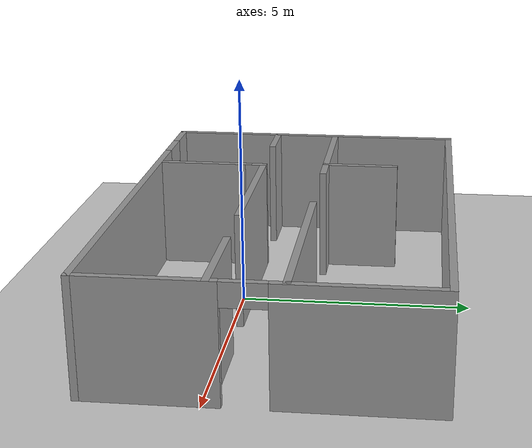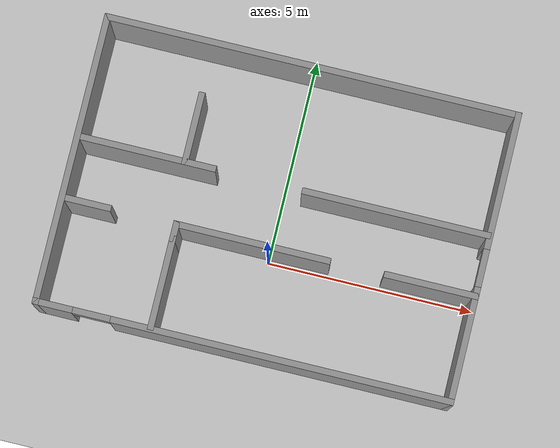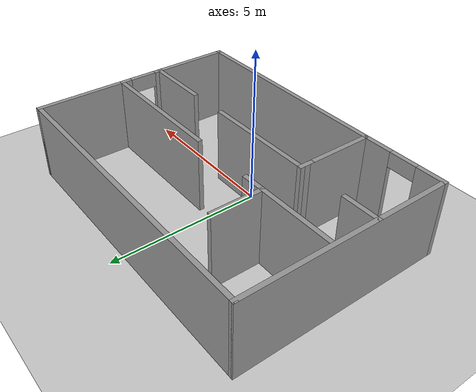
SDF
<?xml version="1.0" ?>
<sdf version='1.5'>

  <world name="default">
    <include>
      <uri>model://sun</uri>
    </include>

    <include>
      <uri>model://ground_plane</uri>
    </include>

    <physics type='ode'>
      <max_step_size>0.01</max_step_size>
      <real_time_factor>1</real_time_factor>
      <real_time_update_rate>100</real_time_update_rate>
      <gravity>0 0 -9.8</gravity>
    </physics>

  <model name='house'>

    <pose frame=''>-0.028762 1.07794 0 0 -0 0</pose>

    <link name='Wall_109'>
      <pose frame=''>0 -3.425 0 0 -0 0</pose>
      <visual name='Wall_109_Visual_0'>
        <pose frame=''>-4.52236 0 1.25 0 -0 0</pose>
        <geometry>
          <box>
            <size>0.955286 0.15 2.5</size>
          </box>
        </geometry>
        <material>
          <script>
            <uri>file://media/materials/scripts/gazebo.material</uri>
            <name>Gazebo/Grey</name>
          </script>
          <ambient>1 1 1 1</ambient>
        </material>
        <meta>
          <layer>0</layer>
        </meta>
      </visual>
      <collision name='Wall_109_Collision_0'>
        <geometry>
          <box>
            <size>0.955286 0.15 2.5</size>
          </box>
        </geometry>
        <pose frame=''>-4.52236 0 1.25 0 -0 0</pose>
      </collision>
      <visual name='Wall_109_Visual_1'>
        <pose frame=''>0.927643 0 1.25 0 -0 0</pose>
        <geometry>
          <box>
            <size>8.14471 0.15 2.5</size>
          </box>
        </geometry>
        <material>
          <script>
            <uri>file://media/materials/scripts/gazebo.material</uri>
            <name>Gazebo/Grey</name>
          </script>
          <ambient>1 1 1 1</ambient>
        </material>
        <meta>
          <layer>0</layer>
        </meta>
      </visual>
      <collision name='Wall_109_Collision_1'>
        <geometry>
          <box>
            <size>8.14471 0.15 2.5</size>
          </box>
        </geometry>
        <pose frame=''>0.927643 0 1.25 0 -0 0</pose>
      </collision>
      <visual name='Wall_109_Visual_2'>
        <pose frame=''>-3.59471 0 2.25 0 -0 0</pose>
        <geometry>
          <box>
            <size>0.9 0.15 0.5</size>
          </box>
        </geometry>
        <material>
          <script>
            <uri>file://media/materials/scripts/gazebo.material</uri>
            <name>Gazebo/Grey</name>
          </script>
          <ambient>1 1 1 1</ambient>
        </material>
        <meta>
          <layer>0</layer>
        </meta>
      </visual>
      <collision name='Wall_109_Collision_2'>
        <geometry>
          <box>
            <size>0.9 0.15 0.5</size>
          </box>
        </geometry>
        <pose frame=''>-3.59471 0 2.25 0 -0 0</pose>
      </collision>
    </link>

    <link name='Wall_111'>
      <collision name='Wall_111_Collision'>
        <geometry>
          <box>
            <size>7 0.15 2.5</size>
          </box>
        </geometry>
        <pose frame=''>0 0 1.25 0 -0 0</pose>
      </collision>
      <visual name='Wall_111_Visual'>
        <pose frame=''>0 0 1.25 0 -0 0</pose>
        <geometry>
          <box>
            <size>7 0.15 2.5</size>
          </box>
        </geometry>
        <material>
          <script>
            <uri>file://media/materials/scripts/gazebo.material</uri>
            <name>Gazebo/Grey</name>
          </script>
          <ambient>1 1 1 1</ambient>
        </material>
        <meta>
          <layer>0</layer>
        </meta>
      </visual>
      <pose frame=''>-4.925 -0 0 0 -0 1.5708</pose>
    </link>

    <link name='Wall_113'>
      <collision name='Wall_113_Collision'>
        <geometry>
          <box>
            <size>10 0.15 2.5</size>
          </box>
        </geometry>
        <pose frame=''>0 0 1.25 0 -0 0</pose>
      </collision>
      <visual name='Wall_113_Visual'>
        <pose frame=''>0 0 1.25 0 -0 0</pose>
        <geometry>
          <box>
            <size>10 0.15 2.5</size>
          </box>
        </geometry>
        <material>
          <script>
            <uri>file://media/materials/scripts/gazebo.material</uri>
            <name>Gazebo/Grey</name>
          </script>
          <ambient>1 1 1 1</ambient>
        </material>
        <meta>
          <layer>0</layer>
        </meta>
      </visual>
      <pose frame=''>0 3.425 0 0 -0 0</pose>
    </link>

    <link name='Wall_115'>
      <pose frame=''>4.925 -0 0 0 -0 -1.5708</pose>
      <visual name='Wall_115_Visual_0'>
        <pose frame=''>-1.85239 0 1.25 0 -0 0</pose>
        <geometry>
          <box>
            <size>3.29522 0.15 2.5</size>
          </box>
        </geometry>
        <material>
          <script>
            <uri>file://media/materials/scripts/gazebo.material</uri>
            <name>Gazebo/Grey</name>
          </script>
          <ambient>1 1 1 1</ambient>
        </material>
        <meta>
          <layer>0</layer>
        </meta>
      </visual>
      <collision name='Wall_115_Collision_0'>
        <geometry>
          <box>
            <size>3.29522 0.15 2.5</size>
          </box>
        </geometry>
        <pose frame=''>-1.85239 0 1.25 0 -0 0</pose>
      </collision>
      <visual name='Wall_115_Visual_1'>
        <pose frame=''>2.09761 0 1.25 0 -0 0</pose>
        <geometry>
          <box>
            <size>2.80478 0.15 2.5</size>
          </box>
        </geometry>
        <material>
          <script>
            <uri>file://media/materials/scripts/gazebo.material</uri>
            <name>Gazebo/Grey</name>
          </script>
          <ambient>1 1 1 1</ambient>
        </material>
        <meta>
          <layer>0</layer>
        </meta>
      </visual>
      <collision name='Wall_115_Collision_1'>
        <geometry>
          <box>
            <size>2.80478 0.15 2.5</size>
          </box>
        </geometry>
        <pose frame=''>2.09761 0 1.25 0 -0 0</pose>
      </collision>
      <visual name='Wall_115_Visual_2'>
        <pose frame=''>0.245219 0 2.25 0 -0 0</pose>
        <geometry>
          <box>
            <size>0.9 0.15 0.5</size>
          </box>
        </geometry>
        <material>
          <script>
            <uri>file://media/materials/scripts/gazebo.material</uri>
            <name>Gazebo/Grey</name>
          </script>
          <ambient>1 1 1 1</ambient>
        </material>
        <meta>
          <layer>0</layer>
        </meta>
      </visual>
      <collision name='Wall_115_Collision_2'>
        <geometry>
          <box>
            <size>0.9 0.15 0.5</size>
          </box>
        </geometry>
        <pose frame=''>0.245219 0 2.25 0 -0 0</pose>
      </collision>
    </link>

    <link name='Wall_17'>
      <collision name='Wall_17_Collision'>
        <geometry>
          <box>
            <size>1.25 0.15 2.5</size>
          </box>
        </geometry>
        <pose frame=''>0 0 1.25 0 -0 0</pose>
      </collision>
      <visual name='Wall_17_Visual'>
        <pose frame=''>0 0 1.25 0 -0 0</pose>
        <geometry>
          <box>
            <size>1.25 0.15 2.5</size>
          </box>
        </geometry>
        <material>
          <script>
            <uri>file://media/materials/scripts/gazebo.material</uri>
            <name>Gazebo/Grey</name>
          </script>
          <ambient>1 1 1 1</ambient>
        </material>
        <meta>
          <layer>0</layer>
        </meta>
      </visual>
      <pose frame=''>-4.37258 -0.929679 0 0 -0 3.14159</pose>
    </link>

    <link name='Wall_21'>
      <collision name='Wall_21_Collision'>
        <geometry>
          <box>
            <size>3.75 0.15 2.5</size>
          </box>
        </geometry>
        <pose frame=''>0 0 1.25 0 -0 0</pose>
      </collision>
      <visual name='Wall_21_Visual'>
        <pose frame=''>0 0 1.25 0 -0 0</pose>
        <geometry>
          <box>
            <size>3.75 0.15 2.5</size>
          </box>
        </geometry>
        <material>
          <script>
            <uri>file://media/materials/scripts/gazebo.material</uri>
            <name>Gazebo/Grey</name>
          </script>
          <ambient>1 1 1 1</ambient>
        </material>
        <meta>
          <layer>0</layer>
        </meta>
      </visual>
      <pose frame=''>-0.393633 -0.923824 0 0 -0 0</pose>
    </link>

    <link name='Wall_23'>
      <collision name='Wall_23_Collision'>
        <geometry>
          <box>
            <size>2.25 0.15 2.5</size>
          </box>
        </geometry>
        <pose frame=''>0 0 1.25 0 -0 0</pose>
      </collision>
      <visual name='Wall_23_Visual'>
        <pose frame=''>0 0 1.25 0 -0 0</pose>
        <geometry>
          <box>
            <size>2.25 0.15 2.5</size>
          </box>
        </geometry>
        <material>
          <script>
            <uri>file://media/materials/scripts/gazebo.material</uri>
            <name>Gazebo/Grey</name>
          </script>
          <ambient>1 1 1 1</ambient>
        </material>
        <meta>
          <layer>0</layer>
        </meta>
      </visual>
      <pose frame=''>3.87339 -0.917109 0 0 -0 0</pose>
    </link>

    <link name='Wall_25'>
      <collision name='Wall_25_Collision'>
        <geometry>
          <box>
            <size>4.5 0.15 2.5</size>
          </box>
        </geometry>
        <pose frame=''>0 0 1.25 0 -0 0</pose>
      </collision>
      <visual name='Wall_25_Visual'>
        <pose frame=''>0 0 1.25 0 -0 0</pose>
        <geometry>
          <box>
            <size>4.5 0.15 2.5</size>
          </box>
        </geometry>
        <material>
          <script>
            <uri>file://media/materials/scripts/gazebo.material</uri>
            <name>Gazebo/Grey</name>
          </script>
          <ambient>1 1 1 1</ambient>
        </material>
        <meta>
          <layer>0</layer>
        </meta>
      </visual>
      <pose frame=''>2.69793 0.52522 0 0 -0 3.14159</pose>
    </link>

    <link name='Wall_27'>
      <collision name='Wall_27_Collision'>
        <geometry>
          <box>
            <size>3.25 0.15 2.5</size>
          </box>
        </geometry>
        <pose frame=''>0 0 1.25 0 -0 0</pose>
      </collision>
      <visual name='Wall_27_Visual'>
        <pose frame=''>0 0 1.25 0 -0 0</pose>
        <geometry>
          <box>
            <size>3.25 0.15 2.5</size>
          </box>
        </geometry>
        <material>
          <script>
            <uri>file://media/materials/scripts/gazebo.material</uri>
            <name>Gazebo/Grey</name>
          </script>
          <ambient>1 1 1 1</ambient>
        </material>
        <meta>
          <layer>0</layer>
        </meta>
      </visual>
      <pose frame=''>-3.2295 0.540515 0 0 -0 3.14159</pose>
    </link>

    <link name='Wall_29'>
      <collision name='Wall_29_Collision'>
        <geometry>
          <box>
            <size>1.75 0.15 2.5</size>
          </box>
        </geometry>
        <pose frame=''>0 0 1.25 0 -0 0</pose>
      </collision>
      <visual name='Wall_29_Visual'>
        <pose frame=''>0 0 1.25 0 -0 0</pose>
        <geometry>
          <box>
            <size>1.75 0.15 2.5</size>
          </box>
        </geometry>
        <material>
          <script>
            <uri>file://media/materials/scripts/gazebo.material</uri>
            <name>Gazebo/Grey</name>
          </script>
            <ambient>1 1 1 1</ambient>
        </material>
        <meta>
          <layer>0</layer>
        </meta>
      </visual>
      <pose frame=''>-2.34789 1.34281 0 0 -0 1.5708</pose>
    </link>

    <link name='Wall_8'>
      <collision name='Wall_8_Collision'>
        <geometry>
          <box>
            <size>2.25 0.15 2.5</size>
          </box>
        </geometry>
        <pose frame=''>0 0 1.25 0 -0 0</pose>
      </collision>
      <visual name='Wall_8_Visual'>
        <pose frame=''>0 0 1.25 0 -0 0</pose>
        <geometry>
          <box>
            <size>2.25 0.15 2.5</size>
          </box>
        </geometry>
        <material>
          <script>
            <uri>file://media/materials/scripts/gazebo.material</uri>
            <name>Gazebo/Grey</name>
          </script>
          <ambient>1 1 1 1</ambient>
        </material>
        <meta>
          <layer>0</layer>
        </meta>
      </visual>
      <pose frame=''>-2.19363 -2.32382 0 0 -0 1.5708</pose>
    </link>

    <link name='Wall_9'>
      <collision name='Wall_9_Collision'>
        <geometry>
          <box>
            <size>0.5 0.15 2.5</size>
          </box>
        </geometry>
        <pose frame=''>0 0 1.25 0 -0 0</pose>
      </collision>
      <visual name='Wall_9_Visual'>
        <pose frame=''>0 0 1.25 0 -0 0</pose>
        <geometry>
          <box>
            <size>0.5 0.15 2.5</size>
          </box>
        </geometry>
        <material>
          <script>
            <uri>file://media/materials/scripts/gazebo.material</uri>
            <name>Gazebo/Grey</name>
          </script>
          <ambient>1 1 1 1</ambient>
        </material>
        <meta>
          <layer>0</layer>
        </meta>
      </visual>
      <pose frame=''>-2.19363 -1.09882 0 0 -0 1.5708</pose>
    </link>

    <static>1</static>
  </model>

</world>

</sdf>
